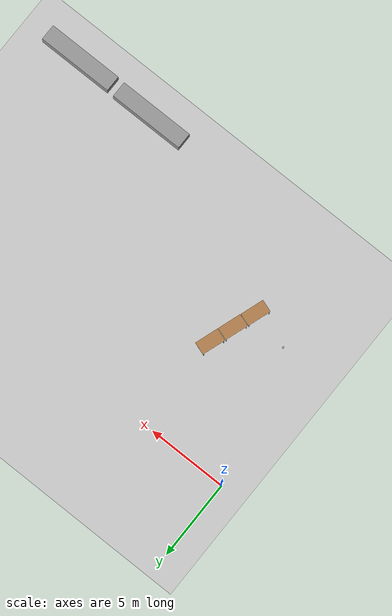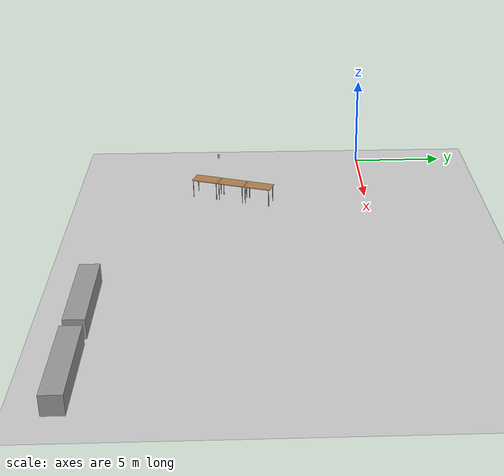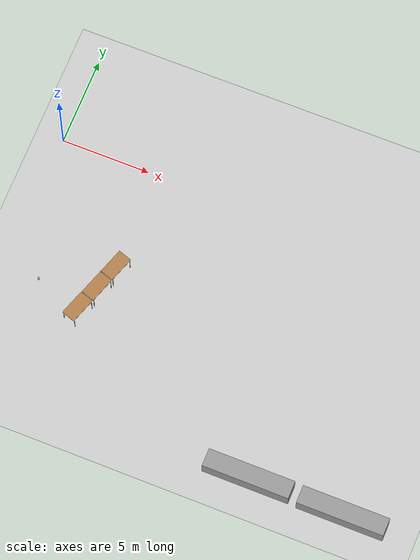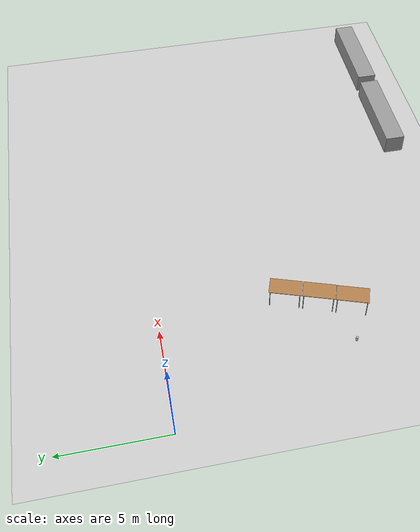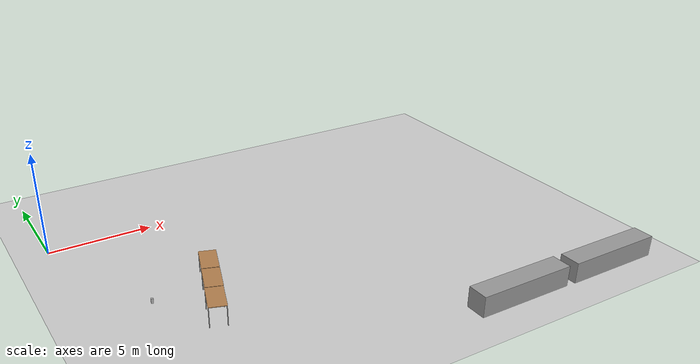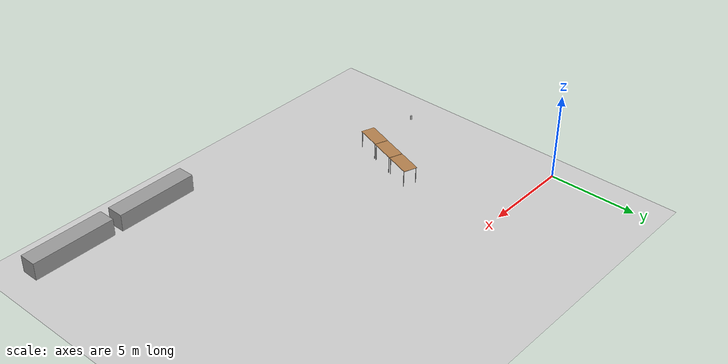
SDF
<sdf version="1.7">
 <world name="default">
  <model name="my_ground_plane">
   <static>1</static>
   <link name="link">
    <collision name="collision">
     <geometry><plane><normal>0 0 1</normal><size>6 6</size></plane></geometry>
     <surface><friction><ode><mu2>1</mu2><mu1>1</mu1></ode></friction></surface>
    </collision>
    <visual name="visual">
     <geometry><plane><normal>0 0 1</normal><size>46 46</size></plane></geometry>
     <cast_shadows>0</cast_shadows>
     <material>
      <script>
       <uri>model://my_ground_plane/materials/scripts</uri>
       <uri>model://my_ground_plane/materials/textures</uri>
       <name>MyGroundPlane/Texture1</name>
      </script>
     </material>
    </visual>
   </link>
   <pose>2.78178 3.19727 0 0 -0 0</pose>
  </model>
  <model name="table">
   <static>1</static>
   <link name="link">
    <collision name="surface">
     <pose>0 0 1 0 -0 0</pose>
     <geometry><box><size>1.5 0.8 0.03</size></box></geometry>
     <surface><friction><ode><mu>0.6</mu><mu2>0.6</mu2></ode></friction></surface>
    </collision>
    <visual name="visual1">
     <pose>0 0 1 0 -0 0</pose>
     <geometry><box><size>1.5 0.8 0.03</size></box></geometry>
     <material>
      <script><uri>file://media/materials/scripts/gazebo.material</uri><name>Gazebo/Wood</name></script>
     </material>
    </visual>
    <collision name="front_left_leg">
     <pose>0.68 0.38 0.5 0 -0 0</pose>
     <geometry><cylinder><radius>0.02</radius><length>1</length></cylinder></geometry>
    </collision>
    <visual name="front_left_leg">
     <pose>0.68 0.38 0.5 0 -0 0</pose>
     <geometry><cylinder><radius>0.02</radius><length>1</length></cylinder></geometry>
     <material>
      <script><uri>file://media/materials/scripts/gazebo.material</uri><name>Gazebo/Grey</name></script>
     </material>
    </visual>
    <collision name="front_right_leg">
     <pose>0.68 -0.38 0.5 0 -0 0</pose>
     <geometry><cylinder><radius>0.02</radius><length>1</length></cylinder></geometry>
    </collision>
    <visual name="front_right_leg">
     <pose>0.68 -0.38 0.5 0 -0 0</pose>
     <geometry><cylinder><radius>0.02</radius><length>1</length></cylinder></geometry>
     <material>
      <script><uri>file://media/materials/scripts/gazebo.material</uri><name>Gazebo/Grey</name></script>
     </material>
    </visual>
    <collision name="back_right_leg">
     <pose>-0.68 -0.38 0.5 0 -0 0</pose>
     <geometry><cylinder><radius>0.02</radius><length>1</length></cylinder></geometry>
    </collision>
    <visual name="back_right_leg">
     <pose>-0.68 -0.38 0.5 0 -0 0</pose>
     <geometry><cylinder><radius>0.02</radius><length>1</length></cylinder></geometry>
     <material>
      <script><uri>file://media/materials/scripts/gazebo.material</uri><name>Gazebo/Grey</name></script>
     </material>
    </visual>
    <collision name="back_left_leg">
     <pose>-0.68 0.38 0.5 0 -0 0</pose>
     <geometry><cylinder><radius>0.02</radius><length>1</length></cylinder></geometry>
    </collision>
    <visual name="back_left_leg">
     <pose>-0.68 0.38 0.5 0 -0 0</pose>
     <geometry><cylinder><radius>0.02</radius><length>1</length></cylinder></geometry>
     <material>
      <script><uri>file://media/materials/scripts/gazebo.material</uri><name>Gazebo/Grey</name></script>
     </material>
    </visual>
   </link>
   <pose>5.58568 -5.9524 0 0 -0 1.246</pose>
  </model>
  <model name="table_clone">
   <static>1</static>
   <link name="link">
    <collision name="surface">
     <pose>0 0 1 0 -0 0</pose>
     <geometry><box><size>1.5 0.8 0.03</size></box></geometry>
     <surface><friction><ode><mu>0.6</mu><mu2>0.6</mu2></ode></friction></surface>
    </collision>
    <visual name="visual1">
     <pose>0 0 1 0 -0 0</pose>
     <geometry><box><size>1.5 0.8 0.03</size></box></geometry>
     <material>
      <script><uri>file://media/materials/scripts/gazebo.material</uri><name>Gazebo/Wood</name></script>
     </material>
    </visual>
    <collision name="front_left_leg">
     <pose>0.68 0.38 0.5 0 -0 0</pose>
     <geometry><cylinder><radius>0.02</radius><length>1</length></cylinder></geometry>
    </collision>
    <visual name="front_left_leg">
     <pose>0.68 0.38 0.5 0 -0 0</pose>
     <geometry><cylinder><radius>0.02</radius><length>1</length></cylinder></geometry>
     <material>
      <script><uri>file://media/materials/scripts/gazebo.material</uri><name>Gazebo/Grey</name></script>
     </material>
    </visual>
    <collision name="front_right_leg">
     <pose>0.68 -0.38 0.5 0 -0 0</pose>
     <geometry><cylinder><radius>0.02</radius><length>1</length></cylinder></geometry>
    </collision>
    <visual name="front_right_leg">
     <pose>0.68 -0.38 0.5 0 -0 0</pose>
     <geometry><cylinder><radius>0.02</radius><length>1</length></cylinder></geometry>
     <material>
      <script><uri>file://media/materials/scripts/gazebo.material</uri><name>Gazebo/Grey</name></script>
     </material>
    </visual>
    <collision name="back_right_leg">
     <pose>-0.68 -0.38 0.5 0 -0 0</pose>
     <geometry><cylinder><radius>0.02</radius><length>1</length></cylinder></geometry>
    </collision>
    <visual name="back_right_leg">
     <pose>-0.68 -0.38 0.5 0 -0 0</pose>
     <geometry><cylinder><radius>0.02</radius><length>1</length></cylinder></geometry>
     <material>
      <script><uri>file://media/materials/scripts/gazebo.material</uri><name>Gazebo/Grey</name></script>
     </material>
    </visual>
    <collision name="back_left_leg">
     <pose>-0.68 0.38 0.5 0 -0 0</pose>
     <geometry><cylinder><radius>0.02</radius><length>1</length></cylinder></geometry>
    </collision>
    <visual name="back_left_leg">
     <pose>-0.68 0.38 0.5 0 -0 0</pose>
     <geometry><cylinder><radius>0.02</radius><length>1</length></cylinder></geometry>
     <material>
      <script><uri>file://media/materials/scripts/gazebo.material</uri><name>Gazebo/Grey</name></script>
     </material>
    </visual>
   </link>
   <pose>5.09476 -7.405 0 0 -0 1.246</pose>
  </model>
  <model name="table_clone_clone">
   <static>1</static>
   <link name="link">
    <collision name="surface">
     <pose>0 0 1 0 -0 0</pose>
     <geometry><box><size>1.5 0.8 0.03</size></box></geometry>
     <surface><friction><ode><mu>0.6</mu><mu2>0.6</mu2></ode></friction></surface>
    </collision>
    <visual name="visual1">
     <pose>0 0 1 0 -0 0</pose>
     <geometry><box><size>1.5 0.8 0.03</size></box></geometry>
     <material>
      <script><uri>file://media/materials/scripts/gazebo.material</uri><name>Gazebo/Wood</name></script>
     </material>
    </visual>
    <collision name="front_left_leg">
     <pose>0.68 0.38 0.5 0 -0 0</pose>
     <geometry><cylinder><radius>0.02</radius><length>1</length></cylinder></geometry>
    </collision>
    <visual name="front_left_leg">
     <pose>0.68 0.38 0.5 0 -0 0</pose>
     <geometry><cylinder><radius>0.02</radius><length>1</length></cylinder></geometry>
     <material>
      <script><uri>file://media/materials/scripts/gazebo.material</uri><name>Gazebo/Grey</name></script>
     </material>
    </visual>
    <collision name="front_right_leg">
     <pose>0.68 -0.38 0.5 0 -0 0</pose>
     <geometry><cylinder><radius>0.02</radius><length>1</length></cylinder></geometry>
    </collision>
    <visual name="front_right_leg">
     <pose>0.68 -0.38 0.5 0 -0 0</pose>
     <geometry><cylinder><radius>0.02</radius><length>1</length></cylinder></geometry>
     <material>
      <script><uri>file://media/materials/scripts/gazebo.material</uri><name>Gazebo/Grey</name></script>
     </material>
    </visual>
    <collision name="back_right_leg">
     <pose>-0.68 -0.38 0.5 0 -0 0</pose>
     <geometry><cylinder><radius>0.02</radius><length>1</length></cylinder></geometry>
    </collision>
    <visual name="back_right_leg">
     <pose>-0.68 -0.38 0.5 0 -0 0</pose>
     <geometry><cylinder><radius>0.02</radius><length>1</length></cylinder></geometry>
     <material>
      <script><uri>file://media/materials/scripts/gazebo.material</uri><name>Gazebo/Grey</name></script>
     </material>
    </visual>
    <collision name="back_left_leg">
     <pose>-0.68 0.38 0.5 0 -0 0</pose>
     <geometry><cylinder><radius>0.02</radius><length>1</length></cylinder></geometry>
    </collision>
    <visual name="back_left_leg">
     <pose>-0.68 0.38 0.5 0 -0 0</pose>
     <geometry><cylinder><radius>0.02</radius><length>1</length></cylinder></geometry>
     <material>
      <script><uri>file://media/materials/scripts/gazebo.material</uri><name>Gazebo/Grey</name></script>
     </material>
    </visual>
   </link>
   <pose>4.5936 -8.84884 0 0 -0 1.246</pose>
  </model>
  <model name="beer">
   <link name="link">
    <pose>0 0 0.115 0 -0 0</pose>
    <inertial>
     <mass>0.39</mass>
     <inertia><ixx>0.00058</ixx><ixy>0</ixy><ixz>0</ixz><iyy>0.00058</iyy><iyz>0</iyz><izz>0.00019</izz></inertia>
    </inertial>
    <collision name="collision">
     <geometry><cylinder><radius>0.055</radius><length>0.23</length></cylinder></geometry>
    </collision>
    <visual name="visual">
     <geometry><cylinder><radius>0.055</radius><length>0.23</length></cylinder></geometry>
     <material>
      <script>
       <uri>model://beer/materials/scripts</uri>
       <uri>model://beer/materials/textures</uri>
       <name>Beer/Diffuse</name>
      </script>
     </material>
    </visual>
   </link>
   <pose>2.13174 -8.25356 1.19999 -1.9e-05 -3.5e-05 -0.000137</pose>
  </model>
  <model name="unit_box">
   <pose>21.6028 -14.065 0.498243 0 -0.000732 -1e-05</pose>
   <link name="link">
    <inertial>
     <mass>1</mass>
     <inertia>
      <ixx>0.166667</ixx>
      <ixy>0</ixy>
      <ixz>0</ixz>
      <iyy>0.166667</iyy>
      <iyz>0</iyz>
      <izz>0.166667</izz>
     </inertia>
    </inertial>
    <collision name="collision"><geometry><box><size>4.79843 1 1</size></box></geometry></collision>
    <visual name="visual">
     <geometry><box><size>4.79843 1 1</size></box></geometry>
     <material>
      <script><name>Gazebo/Grey</name><uri>file://media/materials/scripts/gazebo.material</uri></script>
     </material>
    </visual>
   </link>
  </model>
  <model name="unit_box_clone">
   <pose>16.3526 -14.0255 0.498243 -0 0.000732 -1e-05</pose>
   <link name="link">
    <inertial>
     <mass>1</mass>
     <inertia>
      <ixx>0.166667</ixx>
      <ixy>0</ixy>
      <ixz>0</ixz>
      <iyy>0.166667</iyy>
      <iyz>0</iyz>
      <izz>0.166667</izz>
     </inertia>
    </inertial>
    <collision name="collision"><geometry><box><size>4.79843 1 1</size></box></geometry></collision>
    <visual name="visual">
     <geometry><box><size>4.79843 1 1</size></box></geometry>
     <material>
      <script><name>Gazebo/Grey</name><uri>file://media/materials/scripts/gazebo.material</uri></script>
     </material>
    </visual>
   </link>
  </model>
 </world>
</sdf>
